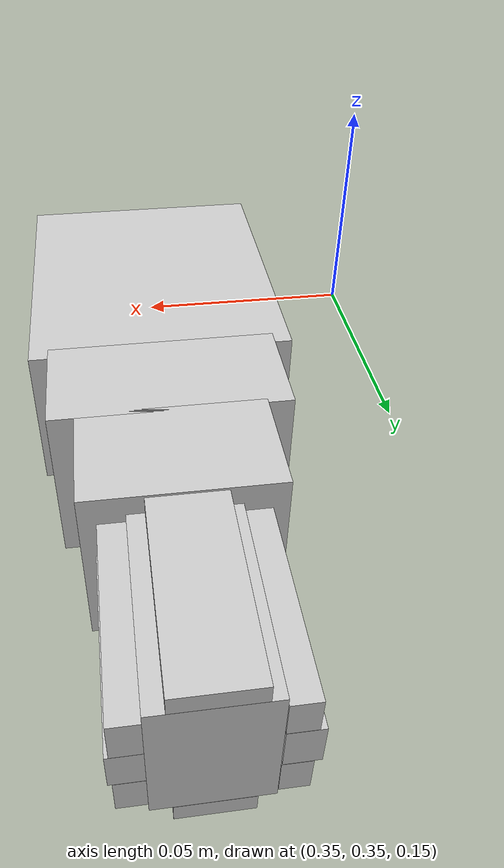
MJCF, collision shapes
<?xml version='1.0' encoding='utf-8'?>
<mujoco>
  <compiler autolimits="true" />
  <default>
    <geom density="1200" />
  </default>
  <asset>
    <texture file="/root/repo/LIBERO/libero/libero/assets/stable_hope_objects/ketchup/texture_map.png" name="p0_tex-textured" type="2d" />
    <material name="p0_textured" reflectance="0.5" texrepeat="1 1" texture="p0_tex-textured" texuniform="false" />
    <mesh file="/root/repo/LIBERO/libero/libero/assets/stable_hope_objects/ketchup/visual/textured_vis.msh" name="p0_textured_vis" scale="0.01 0.01 0.01" />
  </asset>
  <worldbody>
    <body pos="0.4 0.4 0.15" quat="1.0 0.0 0.0 0.0">
      <body name="p0_object">
        <geom solimp="0.998 0.998 0.001" solref="0.001 1" density="100" friction="0.95 0.3 0.1" type="mesh" mesh="p0_textured_vis" conaffinity="0" contype="0" group="1" material="p0_textured" />
        <geom solimp="0.998 0.998 0.001" solref="0.001 1" density="100" friction="0.95 0.3 0.1" type="box" pos="0.00045 -0.03935 0.00079" quat="0.50000 0.50000 0.50000 -0.50000" size="0.01695 0.02811 0.03307" group="0" rgba="0.8 0.8 0.8 0.3" />
        <geom solimp="0.998 0.998 0.001" solref="0.001 1" density="100" friction="0.95 0.3 0.1" type="box" pos="0.00045 0.00369 0.00079" quat="0.50000 0.50000 -0.50000 -0.50000" size="0.01126 0.01834 0.02393" group="0" rgba="0.8 0.8 0.8 0.3" />
        <geom solimp="0.998 0.998 0.001" solref="0.001 1" density="100" friction="0.95 0.3 0.1" type="box" pos="0.00045 0.02513 0.00079" quat="0.50000 0.50000 -0.50000 -0.50000" size="0.01126 0.01834 0.01869" group="0" rgba="0.8 0.8 0.8 0.3" />
        <geom solimp="0.998 0.998 0.001" solref="0.001 1" density="100" friction="0.95 0.3 0.1" type="box" pos="0.00045 0.05471 0.00079" quat="0.00000 -0.00000 0.70711 -0.70711" size="0.01032 0.01414 0.01848" group="0" rgba="0.8 0.8 0.8 0.3" />
        <geom solimp="0.998 0.998 0.001" solref="0.001 1" density="100" friction="0.95 0.3 0.1" type="box" pos="0.01368 0.05471 0.00079" quat="0.70711 0.70711 0.00000 -0.00000" size="0.00292 0.00405 0.01848" group="0" rgba="0.8 0.8 0.8 0.3" />
        <geom solimp="0.998 0.998 0.001" solref="0.001 1" density="100" friction="0.95 0.3 0.1" type="box" pos="-0.01322 0.05471 0.00079" quat="0.00000 0.00000 0.70711 0.70711" size="0.00315 0.00460 0.01848" group="0" rgba="0.8 0.8 0.8 0.3" />
        <geom solimp="0.998 0.998 0.001" solref="0.001 1" density="100" friction="0.95 0.3 0.1" type="box" pos="0.00008 0.05471 -0.01554" quat="0.50000 -0.50000 0.50000 0.50000" size="0.00209 0.00685 0.01848" group="0" rgba="0.8 0.8 0.8 0.3" />
        <geom solimp="0.998 0.998 0.001" solref="0.001 1" density="100" friction="0.95 0.3 0.1" type="box" pos="0.00002 0.05471 0.01682" quat="0.50000 -0.50000 0.50000 0.50000" size="0.00186 0.00740 0.01848" group="0" rgba="0.8 0.8 0.8 0.3" />
        <geom solimp="0.998 0.998 0.001" solref="0.001 1" density="100" friction="0.95 0.3 0.1" type="box" pos="0.01333 0.05471 0.00901" quat="0.70711 0.70711 0.00000 -0.00000" size="0.00259 0.00413 0.01848" group="0" rgba="0.8 0.8 0.8 0.3" />
        <geom solimp="0.998 0.998 0.001" solref="0.001 1" density="100" friction="0.95 0.3 0.1" type="box" pos="0.01333 0.05471 -0.00727" quat="0.00000 0.00000 0.70711 0.70711" size="0.00259 0.00392 0.01848" group="0" rgba="0.8 0.8 0.8 0.3" />
        <geom solimp="0.998 0.998 0.001" solref="0.001 1" density="100" friction="0.95 0.3 0.1" type="box" pos="-0.01254 0.05471 -0.00799" quat="0.00000 0.00000 0.70711 0.70711" size="0.00259 0.00405 0.01848" group="0" rgba="0.8 0.8 0.8 0.3" />
        <geom solimp="0.998 0.998 0.001" solref="0.001 1" density="100" friction="0.95 0.3 0.1" type="box" pos="-0.01259 0.05471 0.00929" quat="0.00000 0.00000 0.70711 0.70711" size="0.00259 0.00380 0.01848" group="0" rgba="0.8 0.8 0.8 0.3" />
      </body>
      <site rgba="0 0 0 0" size="0.005" pos="0 0 -0.06" name="p0_bottom_site" />
      <site rgba="0 0 0 0" size="0.005" pos="0 0 0.04" name="p0_top_site" />
      <site rgba="0 0 0 0" size="0.005" pos="0.025 0.025 0" name="p0_horizontal_radius_site" />
      <freejoint />
    </body>
  </worldbody>
</mujoco>
